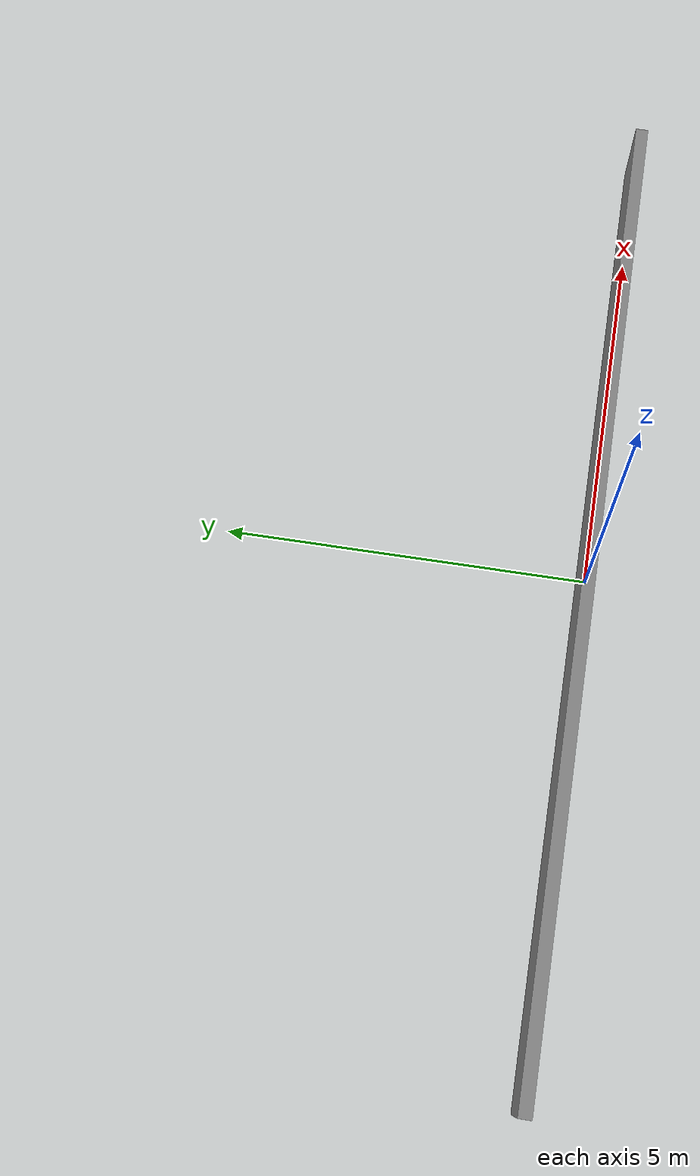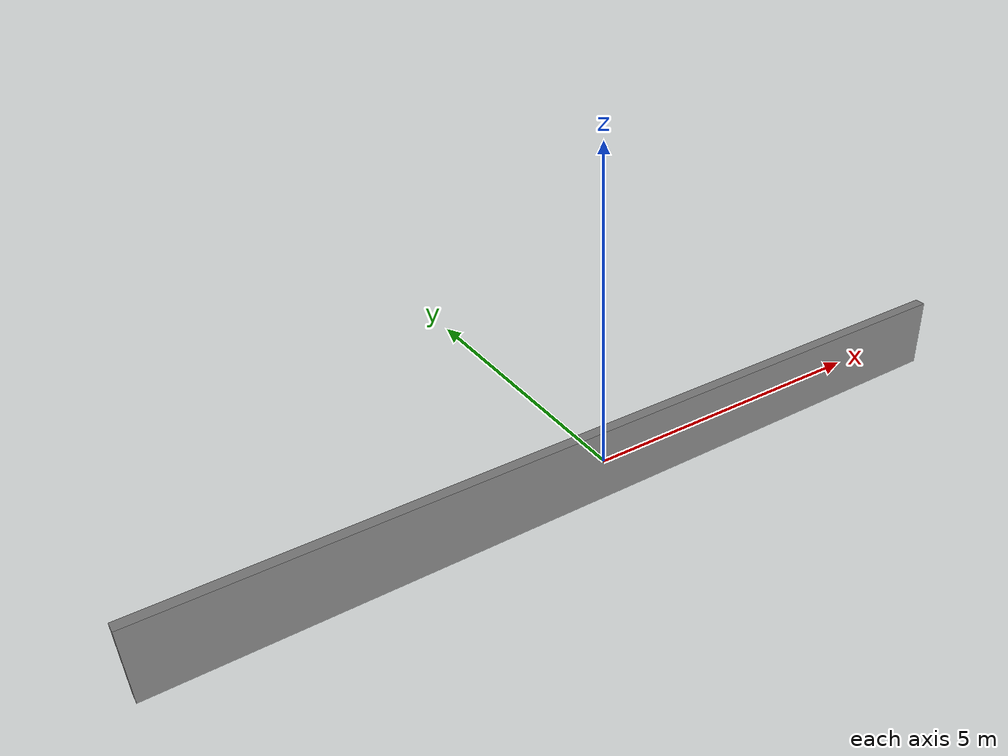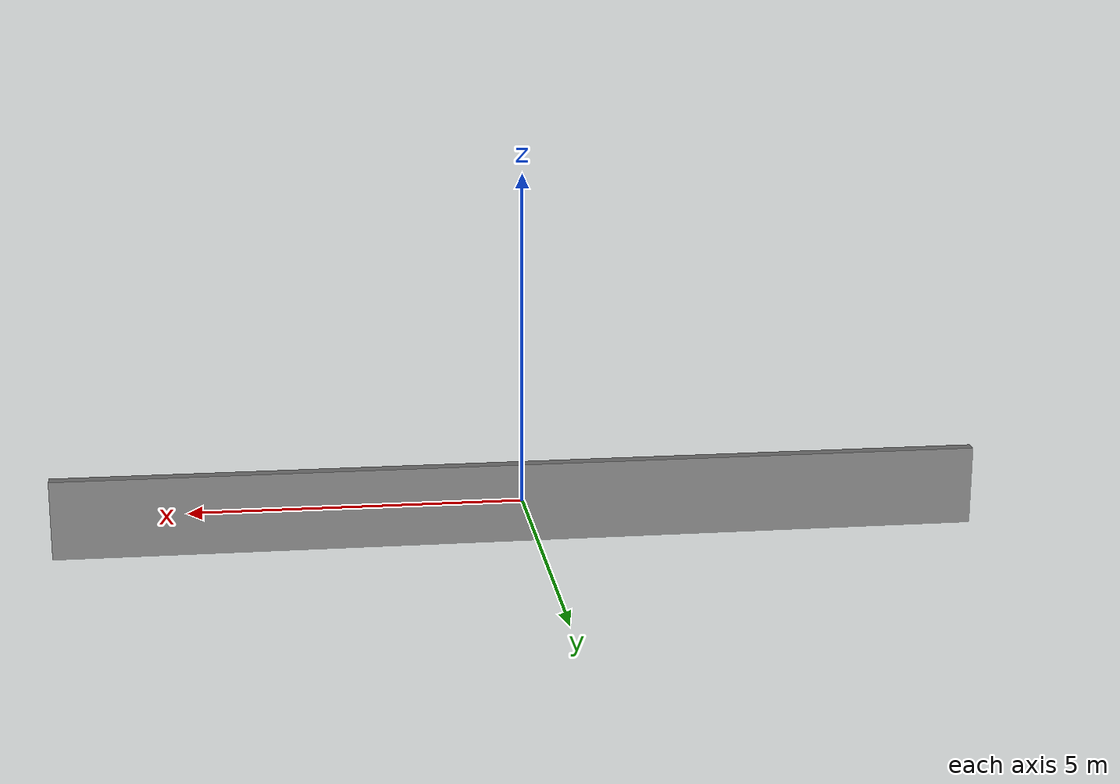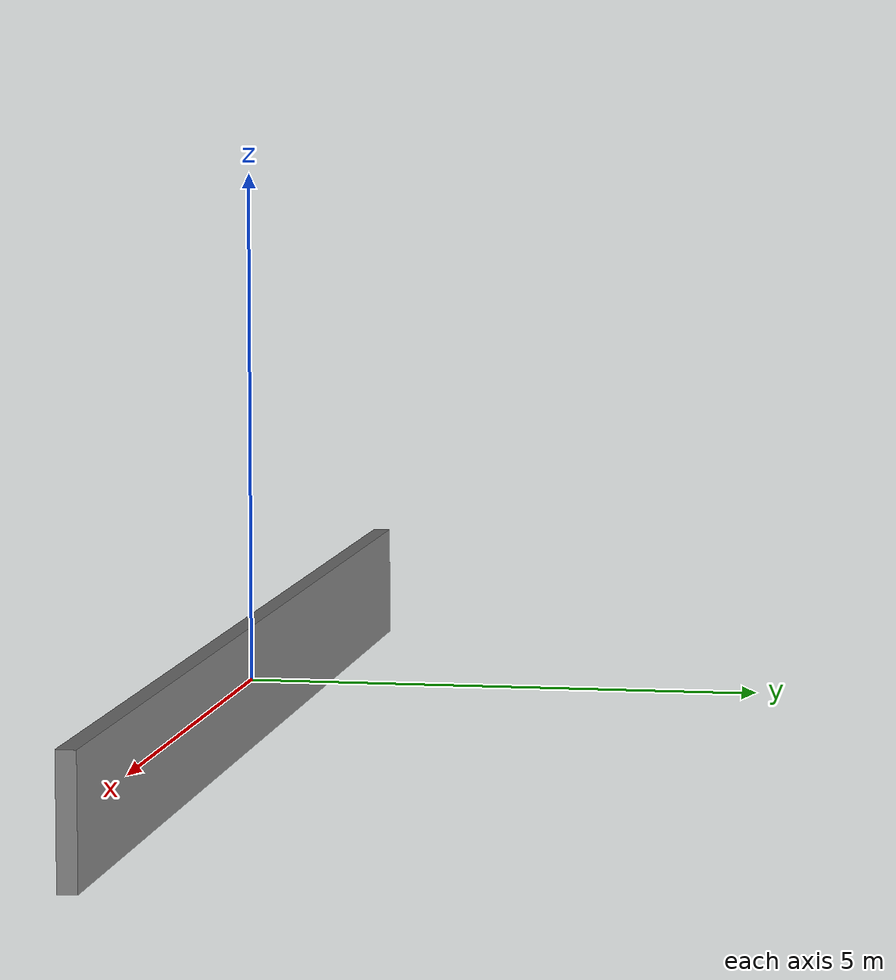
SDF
<?xml version="1.0"?>
<sdf version="1.6"><model name="r680_wall_long"><static>true</static><link name="body"><collision name="collision"><geometry><box><size>14 0.18 1.2</size></box></geometry></collision><visual name="visual"><geometry><box><size>14 0.18 1.2</size></box></geometry><material><ambient>0.35 0.35 0.35 1</ambient><diffuse>0.5 0.5 0.5 1</diffuse></material></visual></link></model></sdf>
